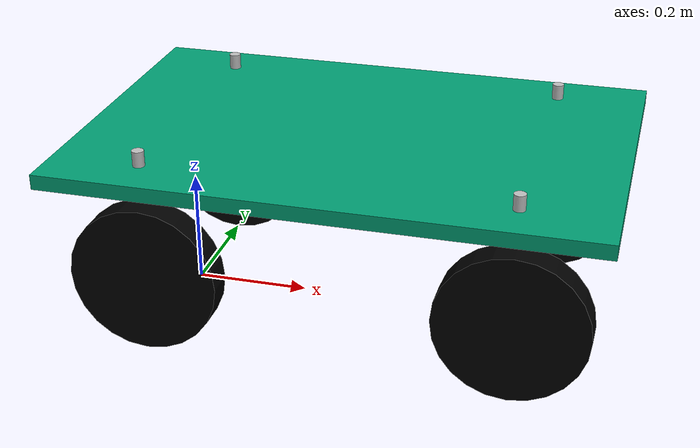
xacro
<?xml version="1.0"?>
<robot xmlns:xacro="http://www.ros.org/wiki/xacro"  name="robot">

    <!-- Run other File -->

    <xacro:include filename="robot_core.xacro"/>

    <xacro:include filename="gazebo_control.xacro"/>

</robot>

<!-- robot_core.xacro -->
<robot xmlns:xacro="http://www.ros.org/wiki/xacro"  name="robot">

  <xacro:arg name="wheel_diameter" default="0.254"/>

  <xacro:property name="wheel_radius" value="${$(arg wheel_diameter)/2}"/>
  <xacro:property name="wheel_width" value="0.05"/>

  <xacro:property name="wheelbase_length" value="0.6096"/>
  <xacro:property name="front_wheelbase_width" value="0.4572"/>
  <xacro:property name="rear_wheelbase_width" value="0.4572"/>
  <xacro:property name="wheel_mass" value="1"/>
  <xacro:property name="total_mass" value = "5.0"/>
  <xacro:property name="shock_travel" value = "0.035"/>
  <xacro:property name="shock_height" value = "0.2"/>
  <xacro:property name="chassis_height" value = "0.0254"/>
  <xacro:property name="chassis_elevation" value = "0.3"/>
  <xacro:property name="chassis_mass" value = "${total_mass-4*wheel_mass}"/>
  <xacro:property name="chassis_l" value = "0.9144"/>
  <xacro:property name="chassis_w" value = "0.6096"/>
  <xacro:property name="chassis_t" value = "0.0254"/>
  <xacro:property name="steering_limit" value = "1"/>

  <xacro:macro name="cylinder_inertia" params="m r h">
        <inertia  ixx="${m*(3*r*r+h*h)/12}" ixy = "0" ixz = "0"
                    iyy="${m*(3*r*r+h*h)/12}" iyz = "0"
                    izz="${m*r*r/2}" />
  </xacro:macro>

  <xacro:macro name="box_inertia" params="m x y z">
          <inertia  ixx="${m*(y*y+z*z)/12}" ixy = "0" ixz = "0"
                    iyy="${m*(x*x+z*z)/12}" iyz = "0"
                    izz="${m*(x*x+z*z)/12}" />
  </xacro:macro>

  <xacro:macro name="sphere_inertia" params="m r">
          <inertia  ixx="${2*m*r*r/5}" ixy = "0" ixz = "0"
                    iyy="${2*m*r*r/5}" iyz = "0"
                    izz="${2*m*r*r/5}" />
  </xacro:macro>

  <xacro:macro name="cylinder_inertial" params="m r h">
    <inertial>
      <mass value="${m}"/>
      <xacro:cylinder_inertia m="${m}" r="${r}" h="${h}"/>
    </inertial>
  </xacro:macro>

  <link name="base_footprint"/>

  <link name="base_link"/>
  <link name="chassis_link">
    <visual>
      <geometry>
        <box size="${chassis_l} ${chassis_w} ${chassis_t}"/>
      </geometry>
    </visual>
    <collision>
      <geometry>
        <box size="${chassis_l} ${chassis_w} ${chassis_t}"/>
      </geometry>
    </collision>
    <inertial>
      <mass value="${chassis_mass}"/>
      <xacro:box_inertia m="${chassis_mass}" x="${chassis_l}" y="${chassis_w}" z="${chassis_t}"/>
    </inertial>
  </link>

  <link name="back_left_wheel">
    <visual>
      <geometry>
        <cylinder length="${wheel_width}" radius="${wheel_radius}"/>
      </geometry>
      <material name="black">
        <color rgba="0 0 0 1"/>
      </material>
    </visual>
    <collision>
      <geometry>
        <cylinder length="${wheel_width}" radius="${wheel_radius}"/>
      </geometry>
    </collision>

    <xacro:cylinder_inertial m="${wheel_mass}" r="${wheel_radius}" h="${wheel_width}"/>
  </link>

  <link name="back_right_wheel">
    <visual>
      <geometry>
        <cylinder length="${wheel_width}" radius="${wheel_radius}"/>
      </geometry>
      <material name="black">
        <color rgba="0 0 0 1"/>
      </material>
    </visual>
    <collision>
      <geometry>
        <cylinder length="${wheel_width}" radius="${wheel_radius}"/>
      </geometry>
    </collision>
    <xacro:cylinder_inertial m="${wheel_mass}" r="${wheel_radius}" h="${wheel_width}"/>
  </link>

  <link name="front_left_wheel_steer">
    <visual>
      <geometry>
        <cylinder length="0.01" radius="0.01"/>
      </geometry>
      <material name="black">
        <color rgba="0 0 0 1"/>
      </material>
    </visual>
    <collision>
      <geometry>
        <cylinder length="0.01" radius="0.01"/>
      </geometry>
    </collision>
    <inertial>
      <mass value="0.1"/>
      <inertia ixx="5.1458e-5" iyy="5.1458e-5" izz="6.125e-5"
               ixy="0" ixz="0" iyz="0"/>
    </inertial>
  </link>
    <link name="front_left_wheel">
    <visual>
      <geometry>
        <cylinder length="${wheel_width}" radius="${wheel_radius}"/>
      </geometry>
      <material name="black">
        <color rgba="0 0 0 1"/>
      </material>
    </visual>
    <collision>
      <geometry>
        <cylinder length="${wheel_width}" radius="${wheel_radius}"/>
      </geometry>
    </collision>
    <xacro:cylinder_inertial m="${wheel_mass}" r="${wheel_radius}" h="${wheel_width}"/>
  </link>

  <link name="front_right_wheel_steer">
    <visual>
      <geometry>
        <cylinder length="0.01" radius="0.01"/>
      </geometry>
      <material name="black">
        <color rgba="0 0 0 1"/>
      </material>
    </visual>
    <collision>
      <geometry>
        <cylinder length="0.01" radius="0.01"/>
      </geometry>
    </collision>
    <inertial>
      <mass value="0.1"/>
      <inertia ixx="5.1458e-5" iyy="5.1458e-5" izz="6.125e-5"
               ixy="0" ixz="0" iyz="0"/>
    </inertial>
  </link>

  <link name="front_right_wheel">
    <visual>
      <geometry>
        <cylinder length="${wheel_width}" radius="${wheel_radius}"/>
      </geometry>
      <material name="black">
        <color rgba="0 0 0 1"/>
      </material>
    </visual>
    <collision>
      <geometry>
        <cylinder length="${wheel_width}" radius="${wheel_radius}"/>
      </geometry>
    </collision>
    <xacro:cylinder_inertial m="${wheel_mass}" r="${wheel_radius}" h="${wheel_width}"/>
  </link>

  <link name="back_left_wheel_shock">
      <visual>
      <origin xyz="0 0 ${shock_height}" rpy="0 0 0"/>
      <geometry>
        <cylinder length="0.05" radius="0.01"/>
      </geometry>
      <material name="silver">
        <color rgba="0.75 0.75 0.75 1"/>
      </material>
    </visual>
    <collision>
      <origin xyz="0 0 ${shock_height}" rpy="0 0 0"/>
      <geometry>
        <cylinder length="0.05" radius="0.01"/>
      </geometry>
    </collision>
    <inertial>
      <mass value="0.01"/>
      <inertia ixx="0.015" iyy="0.0375" izz="0.0375"
               ixy="0" ixz="0" iyz="0"/>
    </inertial>
  </link>

  <link name="back_right_wheel_shock">
    <visual>
    <origin xyz="0 0 ${shock_height}" rpy="0 0 0"/>
    <geometry>
      <cylinder length="0.05" radius="0.01"/>
    </geometry>
    <material name="silver">
      <color rgba="0.75 0.75 0.75 1"/>
    </material>
  </visual>
  <collision>
    <origin xyz="0 0 ${shock_height}" rpy="0 0 0"/>
    <geometry>
      <cylinder length="0.05" radius="0.01"/>
    </geometry>
  </collision>
  <inertial>
    <mass value="0.01"/>
    <inertia ixx="0.015" iyy="0.0375" izz="0.0375"
              ixy="0" ixz="0" iyz="0"/>
  </inertial>
</link>

  <link name="front_left_wheel_shock">
      <visual>
      <origin xyz="0 0 ${shock_height}" rpy="0 0 0"/>
      <geometry>
        <cylinder length="0.05" radius="0.01"/>
      </geometry>
      <material name="silver">
        <color rgba="0.75 0.75 0.75 1"/>
      </material>
    </visual>
    <collision>
      <origin xyz="0 0 ${shock_height}" rpy="0 0 0"/>
      <geometry>
        <cylinder length="0.05" radius="0.01"/>
      </geometry>
    </collision>
    <inertial>
      <mass value="0.01"/>
      <inertia ixx="0.015" iyy="0.0375" izz="0.0375"
               ixy="0" ixz="0" iyz="0"/>
    </inertial>
  </link>

  <link name="front_right_wheel_shock">
      <visual>
      <origin xyz="0 0 ${shock_height}" rpy="0 0 0"/>
      <geometry>
        <cylinder length="0.05" radius="0.01"/>
      </geometry>
      <material name="silver">
        <color rgba="0.75 0.75 0.75 1"/>
      </material>
    </visual>
    <collision>
      <origin xyz="0 0 ${shock_height}" rpy="0 0 0"/>
      <geometry>
        <cylinder length="0.05" radius="0.01"/>
      </geometry>
    </collision>
    <inertial>
      <mass value="0.01"/>
      <inertia ixx="0.015" iyy="0.0375" izz="0.0375"
               ixy="0" ixz="0" iyz="0"/>
    </inertial>
  </link>

  <joint name="base_link_joint" type="fixed">
     <parent link="base_footprint"/>
     <child link="base_link"/>
     <origin rpy="0 0 0" xyz="0 0 0"/>
   </joint>

  <joint name="back_left_shock_joint" type="prismatic">
    <limit lower="0" upper="${shock_travel}" effort="100" velocity="100"/>
    <axis xyz="0 0 1"/>
    <parent link="base_link"/>
    <child link="back_left_wheel_shock"/>
    <origin rpy="0 0 0" xyz="0 ${rear_wheelbase_width/2}  ${wheel_radius}"/>
  </joint>

  <joint name="back_left_wheel_joint" type="continuous">
    <axis xyz="0 0 1"/>
    <parent link="back_left_wheel_shock"/>
    <child link="back_left_wheel"/>
    <origin rpy="${-pi/2} 0 0" xyz="0 0 0"/>
    <limit effort="10000" velocity="1" />
  </joint>

  <joint name="back_right_shock_joint" type="prismatic">
    <limit lower="0" upper="${shock_travel}" effort="100" velocity="100"/>
    <axis xyz="0 0 1"/>
    <parent link="base_link"/>
    <child link="back_right_wheel_shock"/>
    <origin rpy="0 0 0" xyz="0 ${-rear_wheelbase_width/2} ${wheel_radius}"/>
  </joint>

  <joint name="back_right_wheel_joint" type="continuous">
    <axis xyz="0 0 1"/>
    <parent link="back_right_wheel_shock"/>
    <child link="back_right_wheel"/>
    <origin rpy="${-pi/2} 0 0" xyz="0 0 0"/>
    <limit effort="10000" velocity="500" />
  </joint>

  <joint name="front_right_shock_joint" type="prismatic">
    <limit lower="0" upper="${shock_travel}" effort="100" velocity="100"/>
    <axis xyz="0 0 1"/>
    <parent link="base_link"/>
    <child link="front_right_wheel_shock"/>
    <origin rpy="0 0 0" xyz="${wheelbase_length} ${-front_wheelbase_width/2} ${wheel_radius}"/>
  </joint>

  <joint name="front_left_shock_joint" type="prismatic">
    <limit lower="0" upper="${shock_travel}" effort="100" velocity="100"/>
    <axis xyz="0 0 1"/>
    <parent link="base_link"/>
    <child link="front_left_wheel_shock"/>
    <origin rpy="0 0 0" xyz="${wheelbase_length} ${front_wheelbase_width/2} ${wheel_radius}"/>
  </joint>

  <joint name="front_left_wheel_steer_joint" type="revolute">
    <limit lower="${-steering_limit}" upper="${steering_limit}" effort="1" velocity="1"/>
    <axis xyz="0 0 1"/>
    <parent link="front_left_wheel_shock"/>
    <child link="front_left_wheel_steer"/>
    <origin rpy="0 0 0" xyz="0 0 0"/>
  </joint>

  <joint name="front_left_wheel_joint" type="continuous">
    <axis xyz="0 0 1"/>
    <parent link="front_left_wheel_steer"/>
    <child link="front_left_wheel"/>
    <origin rpy="${-pi/2} 0 0" xyz="0 0 0"/>
  </joint>

  <joint name="front_right_wheel_steer_joint" type="revolute">
    <limit lower="${-steering_limit}" upper="${steering_limit}" effort="1" velocity="1"/>
    <axis xyz="0 0 1"/>
    <parent link="front_right_wheel_shock"/>
    <child link="front_right_wheel_steer"/>
    <origin rpy="0 0 0" xyz="0 0 0"/>
  </joint>

  <joint name="front_right_wheel_joint" type="continuous">
    <axis xyz="0 0 1"/>
    <parent link="front_right_wheel_steer"/>
    <child link="front_right_wheel"/>
    <origin rpy="${-pi/2} 0 0" xyz="0 0 0"/>
  </joint>

  <joint name="chassis_joint" type="fixed">
    <parent link="base_link"/>
    <child link="chassis_link"/>
    <origin rpy="0 0 0" xyz="${wheelbase_length/2} 0 ${chassis_height/2 + chassis_elevation}"/>
  </joint>

</robot>
